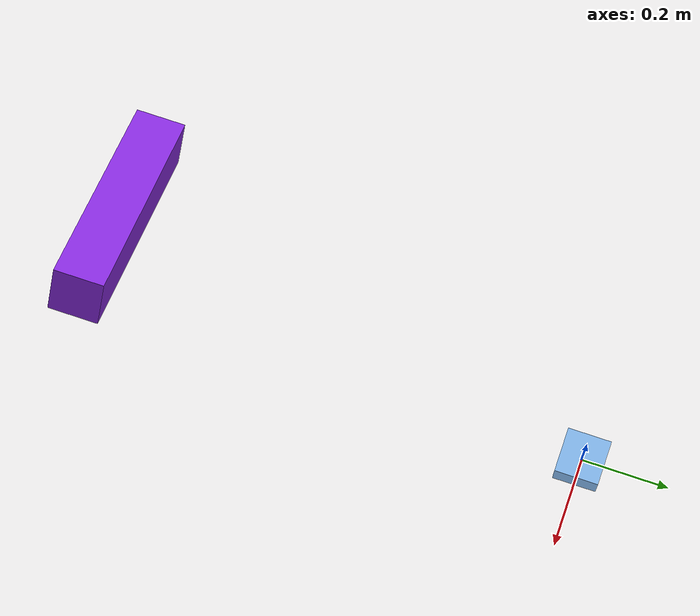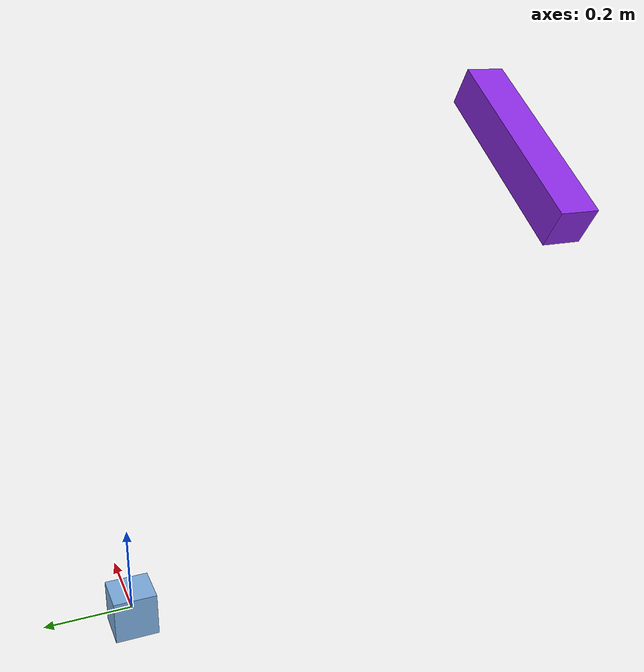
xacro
<?xml version="1.0" ?>
<robot name="atks" xmlns:xacro="http://ros.org/wiki/xacro">

<!-- the order in rpy is rotation around fixed axis in order of X - Y - Z
     rpy is applied first and then xyz is applied. First, rotation and then position -->

  <link name="base">
  <visual>
  <geometry>
      <box size="0.1 0.1 0.1"/>
  </geometry>
  <material name="blackk">
     <color rgba="0.5 0.7 0.9 1.0"/>
   </material>
  </visual>
  </link>

<joint name="base_to_link1" type="revolute">
  <parent link="base"/>
  <child link="link1"/>
  <origin xyz="0 -1 1" rpy="0 -2.18166 0"/>
  <limit effort="1000.0" lower="-3.14" upper="3.14" velocity="0.5"/>
  <axis xyz="0 0 1"/>
</joint>

  <link name="link1">
      <visual>
      <geometry>
          <box size="0.1 0.1 0.5"/>
      </geometry>
      <material name="black">
         <color rgba="138.000000 43.000000 226.000000 1.000000"/>
       </material>
      <origin rpy="0 0 0" xyz="0 0 0"/>
      </visual>
  </link>

</robot>
